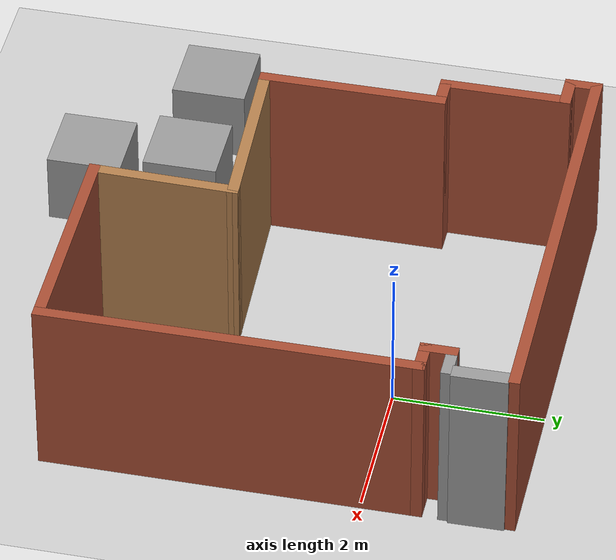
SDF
<sdf version="1.6">
 <world name="default">
  <light name="sun" type="directional">
   <pose>0 0 10 0 -0 0</pose>
   <diffuse>0.8 0.8 0.8 1</diffuse>
   <specular>0.2 0.2 0.2 1</specular>
   <attenuation>
    <range>1000</range>
    <constant>0.9</constant>
    <linear>0.01</linear>
    <quadratic>0.001</quadratic>
   </attenuation>
   <direction>-0.5 0.1 -0.9</direction>
  </light>
  <model name="ground_plane">
   <static>1</static>
   <link name="link">
    <collision name="collision">
     <geometry><plane><normal>0 0 1</normal><size>100 100</size></plane></geometry>
     <surface><friction><ode><mu>100</mu><mu2>50</mu2></ode></friction></surface>
    </collision>
    <visual name="visual">
     <cast_shadows>0</cast_shadows>
     <geometry><plane><normal>0 0 1</normal><size>100 100</size></plane></geometry>
     <material>
      <script><uri>file://media/materials/scripts/gazebo.material</uri><name>Gazebo/Grey</name></script>
     </material>
    </visual>
   </link>
  </model>
  <gravity>0 0 -9.8</gravity>
  <magnetic_field>6e-06 2.3e-05 -4.2e-05</magnetic_field>
  <atmosphere type="adiabatic"/>
  <physics name="default_physics" default="0" type="ode">
   <max_step_size>0.001</max_step_size>
   <real_time_factor>1</real_time_factor>
   <real_time_update_rate>1000</real_time_update_rate>
  </physics>
  <scene><ambient>0.4 0.4 0.4 1</ambient><background>0.7 0.7 0.7 1</background><shadows>1</shadows></scene>
  <spherical_coordinates>
   <surface_model>EARTH_WGS84</surface_model>
   <latitude_deg>0</latitude_deg>
   <longitude_deg>0</longitude_deg>
   <elevation>0</elevation>
   <heading_deg>0</heading_deg>
  </spherical_coordinates>
  <model name="lab_robotica_umng">
   <pose>-0.89704 -1.09534 0 0 -0 0</pose>
   <link name="Door_0">
    <collision name="Door_0_Collision">
     <geometry><box><size>0.733 0.2 2.5</size></box></geometry>
     <pose>0 0 1.25 0 -0 0</pose>
    </collision>
    <visual name="Door_0_Visual">
     <pose>0 0 1.25 0 -0 0</pose>
     <geometry><box><size>0.733 0.2 2.5</size></box></geometry>
     <material>
      <script><uri>file://media/materials/scripts/gazebo.material</uri><name>Gazebo/Grey</name></script>
     </material>
    </visual>
    <pose>2.92835 2.59607 0 0 -0 1.58058</pose>
   </link>
   <link name="Wall_11">
    <collision name="Wall_11_Collision">
     <geometry><box><size>3 0.15 2.5</size></box></geometry>
     <pose>0 0 1.25 0 -0 0</pose>
    </collision>
    <visual name="Wall_11_Visual">
     <pose>0 0 1.25 0 -0 0</pose>
     <geometry><box><size>3 0.15 2.5</size></box></geometry>
     <material>
      <script><uri>file://media/materials/scripts/gazebo.material</uri><name>Gazebo/Bricks</name></script>
      <ambient>1 1 1 1</ambient>
     </material>
    </visual>
    <pose>1.5 -3.02438 0 0 -0 3.14159</pose>
   </link>
   <link name="Wall_12">
    <collision name="Wall_12_Collision">
     <geometry><box><size>2 0.15 2.5</size></box></geometry>
     <pose>0 0 1.25 0 -0 0</pose>
    </collision>
    <visual name="Wall_12_Visual">
     <pose>0 0 1.25 0 -0 0</pose>
     <geometry><box><size>2 0.15 2.5</size></box></geometry>
     <material>
      <script><uri>file://media/materials/scripts/gazebo.material</uri><name>Gazebo/Wood</name></script>
      <ambient>1 1 1 1</ambient>
     </material>
    </visual>
    <pose>0.09249 -2.09938 0 0 -0 1.55189</pose>
   </link>
   <link name="Wall_21">
    <collision name="Wall_21_Collision">
     <geometry><box><size>6 0.15 2.5</size></box></geometry>
     <pose>0 0 1.25 0 -0 0</pose>
    </collision>
    <visual name="Wall_21_Visual">
     <pose>0 0 1.25 0 -0 0</pose>
     <geometry><box><size>6 0.15 2.5</size></box></geometry>
     <material>
      <script><uri>file://media/materials/scripts/gazebo.material</uri><name>Gazebo/Bricks</name></script>
      <ambient>1 1 1 1</ambient>
     </material>
    </visual>
    <pose>0 3.02562 0 0 -0 3.14159</pose>
   </link>
   <link name="Wall_22">
    <collision name="Wall_22_Collision">
     <geometry><box><size>0.5 0.15 2.5</size></box></geometry>
     <pose>0 0 1.25 0 -0 0</pose>
    </collision>
    <visual name="Wall_22_Visual">
     <pose>0 0 1.25 0 -0 0</pose>
     <geometry><box><size>0.5 0.15 2.5</size></box></geometry>
     <material>
      <script><uri>file://media/materials/scripts/gazebo.material</uri><name>Gazebo/Bricks</name></script>
      <ambient>1 1 1 1</ambient>
     </material>
    </visual>
    <pose>-2.925 2.85062 0 0 0 -1.5708</pose>
   </link>
   <link name="Wall_23">
    <collision name="Wall_23_Collision">
     <geometry><box><size>0.5 0.15 2.5</size></box></geometry>
     <pose>0 0 1.25 0 -0 0</pose>
    </collision>
    <visual name="Wall_23_Visual">
     <pose>0 0 1.25 0 -0 0</pose>
     <geometry><box><size>0.5 0.15 2.5</size></box></geometry>
     <material>
      <script><uri>file://media/materials/scripts/gazebo.material</uri><name>Gazebo/Bricks</name></script>
      <ambient>1 1 1 1</ambient>
     </material>
    </visual>
    <pose>-2.75 2.67562 0 0 -0 0</pose>
   </link>
   <link name="Wall_24">
    <collision name="Wall_24_Collision">
     <geometry><box><size>1.75 0.15 2.5</size></box></geometry>
     <pose>0 0 1.25 0 -0 0</pose>
    </collision>
    <visual name="Wall_24_Visual">
     <pose>0 0 1.25 0 -0 0</pose>
     <geometry><box><size>1.75 0.15 2.5</size></box></geometry>
     <material>
      <script><uri>file://media/materials/scripts/gazebo.material</uri><name>Gazebo/Bricks</name></script>
      <ambient>1 1 1 1</ambient>
     </material>
    </visual>
    <pose>-2.575 1.87562 0 0 0 -1.5708</pose>
   </link>
   <link name="Wall_25">
    <collision name="Wall_25_Collision">
     <geometry><box><size>0.5 0.15 2.5</size></box></geometry>
     <pose>0 0 1.25 0 -0 0</pose>
    </collision>
    <visual name="Wall_25_Visual">
     <pose>0 0 1.25 0 -0 0</pose>
     <geometry><box><size>0.5 0.15 2.5</size></box></geometry>
     <material>
      <script><uri>file://media/materials/scripts/gazebo.material</uri><name>Gazebo/Bricks</name></script>
      <ambient>1 1 1 1</ambient>
     </material>
    </visual>
    <pose>-2.4 1.07562 0 0 -0 0</pose>
   </link>
   <link name="Wall_26">
    <collision name="Wall_26_Collision">
     <geometry><box><size>2.5 0.15 2.5</size></box></geometry>
     <pose>0 0 1.25 0 -0 0</pose>
    </collision>
    <visual name="Wall_26_Visual">
     <pose>0 0 1.25 0 -0 0</pose>
     <geometry><box><size>2.5 0.15 2.5</size></box></geometry>
     <material>
      <script><uri>file://media/materials/scripts/gazebo.material</uri><name>Gazebo/Bricks</name></script>
      <ambient>1 1 1 1</ambient>
     </material>
    </visual>
    <pose>-2.225 -0.09938 0 0 0 -1.5708</pose>
   </link>
   <link name="Wall_28">
    <collision name="Wall_28_Collision">
     <geometry><box><size>2.48712 0.15 2.5</size></box></geometry>
     <pose>0 0 1.25 0 -0 0</pose>
    </collision>
    <visual name="Wall_28_Visual">
     <pose>0 0 1.25 0 -0 0</pose>
     <geometry><box><size>2.48712 0.15 2.5</size></box></geometry>
     <material>
      <script><uri>file://media/materials/scripts/gazebo.material</uri><name>Gazebo/Wood</name></script>
      <ambient>1 1 1 1</ambient>
     </material>
    </visual>
    <pose>-1.05751 -1.22438 0 0 -0 0.042801</pose>
   </link>
   <link name="Wall_6">
    <collision name="Wall_6_Collision">
     <geometry><box><size>5 0.15 2.5</size></box></geometry>
     <pose>0 0 1.25 0 -0 0</pose>
    </collision>
    <visual name="Wall_6_Visual">
     <pose>0 0 1.25 0 -0 0</pose>
     <geometry><box><size>5 0.15 2.5</size></box></geometry>
     <material>
      <script><uri>file://media/materials/scripts/gazebo.material</uri><name>Gazebo/Bricks</name></script>
      <ambient>1 1 1 1</ambient>
     </material>
    </visual>
    <pose>2.925 -0.59938 0 0 -0 1.5708</pose>
   </link>
   <link name="Wall_7">
    <collision name="Wall_7_Collision">
     <geometry><box><size>0.5 0.15 2.5</size></box></geometry>
     <pose>0 0 1.25 0 -0 0</pose>
    </collision>
    <visual name="Wall_7_Visual">
     <pose>0 0 1.25 0 -0 0</pose>
     <geometry><box><size>0.5 0.15 2.5</size></box></geometry>
     <material>
      <script><uri>file://media/materials/scripts/gazebo.material</uri><name>Gazebo/Bricks</name></script>
      <ambient>1 1 1 1</ambient>
     </material>
    </visual>
    <pose>2.75 1.82562 0 0 -0 3.14159</pose>
   </link>
   <link name="Wall_8">
    <collision name="Wall_8_Collision">
     <geometry><box><size>0.5 0.15 2.5</size></box></geometry>
     <pose>0 0 1.25 0 -0 0</pose>
    </collision>
    <visual name="Wall_8_Visual">
     <pose>0 0 1.25 0 -0 0</pose>
     <geometry><box><size>0.5 0.15 2.5</size></box></geometry>
     <material>
      <script><uri>file://media/materials/scripts/gazebo.material</uri><name>Gazebo/Bricks</name></script>
      <ambient>1 1 1 1</ambient>
     </material>
    </visual>
    <pose>2.575 2.00062 0 0 -0 1.5708</pose>
   </link>
   <link name="Wall_9">
    <collision name="Wall_9_Collision">
     <geometry><box><size>0.5 0.15 2.5</size></box></geometry>
     <pose>0 0 1.25 0 -0 0</pose>
    </collision>
    <visual name="Wall_9_Visual">
     <pose>0 0 1.25 0 -0 0</pose>
     <geometry><box><size>0.5 0.15 2.5</size></box></geometry>
     <material>
      <script><uri>file://media/materials/scripts/gazebo.material</uri><name>Gazebo/Grey</name></script>
      <ambient>1 1 1 1</ambient>
     </material>
    </visual>
    <pose>2.75 2.17562 0 0 -0 0</pose>
   </link>
   <static>1</static>
  </model>
  <model name="unit_box_0">
   <pose>-4.88877 -3.45354 0.499995 0 1e-05 0</pose>
   <link name="link">
    <inertial>
     <mass>1</mass>
     <inertia>
      <ixx>0.166667</ixx>
      <ixy>0</ixy>
      <ixz>0</ixz>
      <iyy>0.166667</iyy>
      <iyz>0</iyz>
      <izz>0.166667</izz>
     </inertia>
    </inertial>
    <collision name="collision"><geometry><box><size>1 1 1</size></box></geometry></collision>
    <visual name="visual">
     <geometry><box><size>1 1 1</size></box></geometry>
     <material>
      <script><name>Gazebo/Grey</name><uri>file://media/materials/scripts/gazebo.material</uri></script>
     </material>
    </visual>
   </link>
  </model>
  <model name="unit_box_1">
   <pose>-3.31661 -3.48782 0.499995 -1e-05 0 0</pose>
   <link name="link">
    <inertial>
     <mass>1</mass>
     <inertia>
      <ixx>0.166667</ixx>
      <ixy>0</ixy>
      <ixz>0</ixz>
      <iyy>0.166667</iyy>
      <iyz>0</iyz>
      <izz>0.166667</izz>
     </inertia>
    </inertial>
    <collision name="collision"><geometry><box><size>1 1 1</size></box></geometry></collision>
    <visual name="visual">
     <geometry><box><size>1 1 1</size></box></geometry>
     <material>
      <script><name>Gazebo/Grey</name><uri>file://media/materials/scripts/gazebo.material</uri></script>
     </material>
    </visual>
   </link>
  </model>
  <model name="unit_box_2">
   <pose>-3.09662 -4.74975 0.5 0 -0 0</pose>
   <link name="link">
    <inertial>
     <mass>1</mass>
     <inertia>
      <ixx>0.166667</ixx>
      <ixy>0</ixy>
      <ixz>0</ixz>
      <iyy>0.166667</iyy>
      <iyz>0</iyz>
      <izz>0.166667</izz>
     </inertia>
    </inertial>
    <collision name="collision"><geometry><box><size>1 1 1</size></box></geometry></collision>
    <visual name="visual">
     <geometry><box><size>1 1 1</size></box></geometry>
     <material>
      <script><name>Gazebo/Grey</name><uri>file://media/materials/scripts/gazebo.material</uri></script>
     </material>
    </visual>
   </link>
  </model>
 </world>
</sdf>
